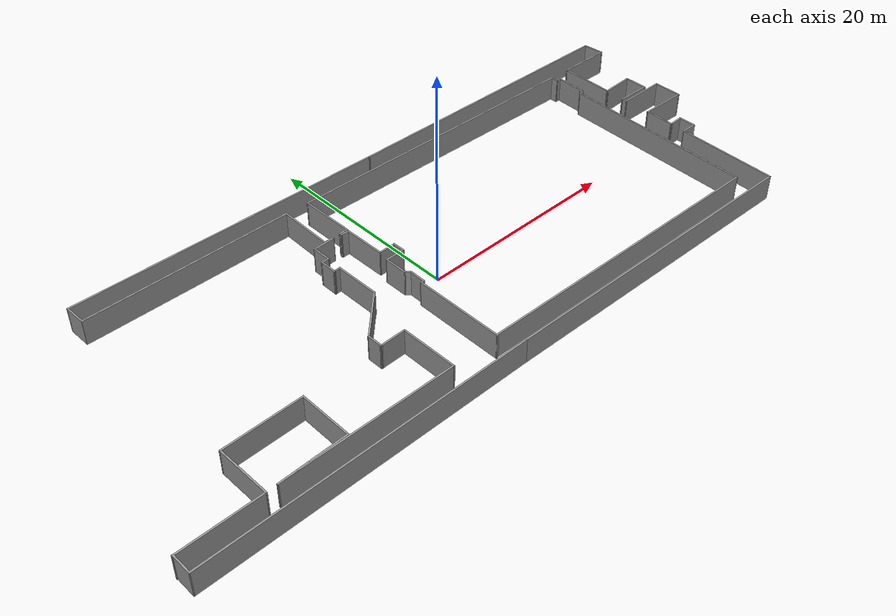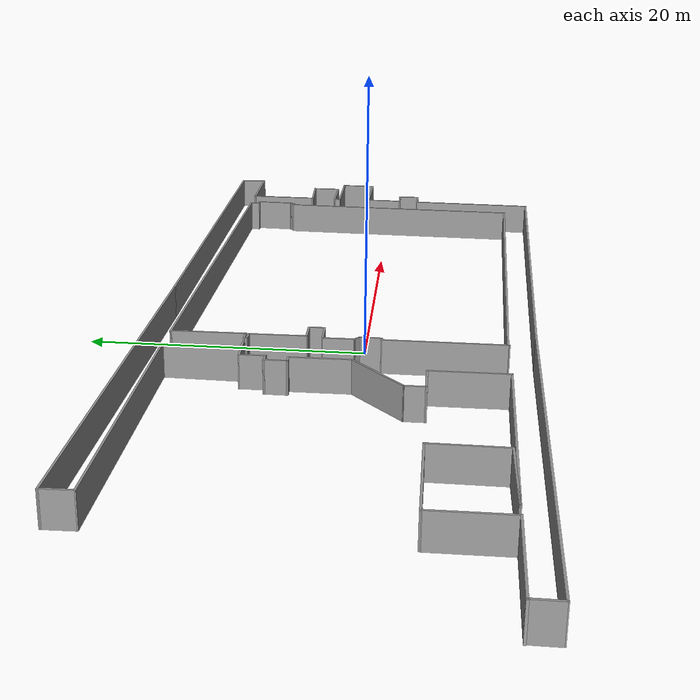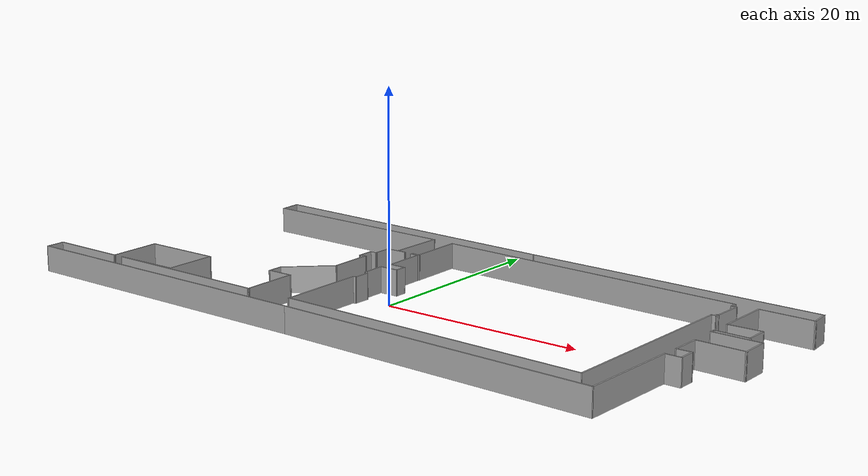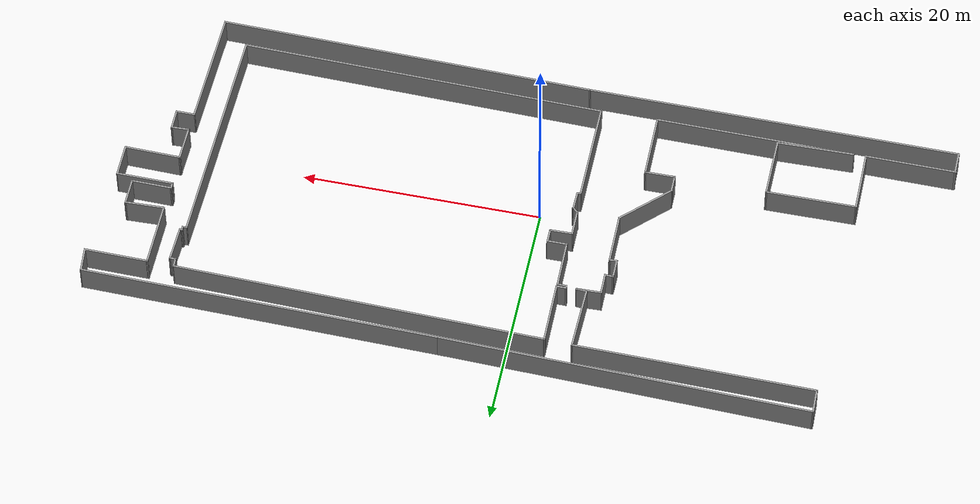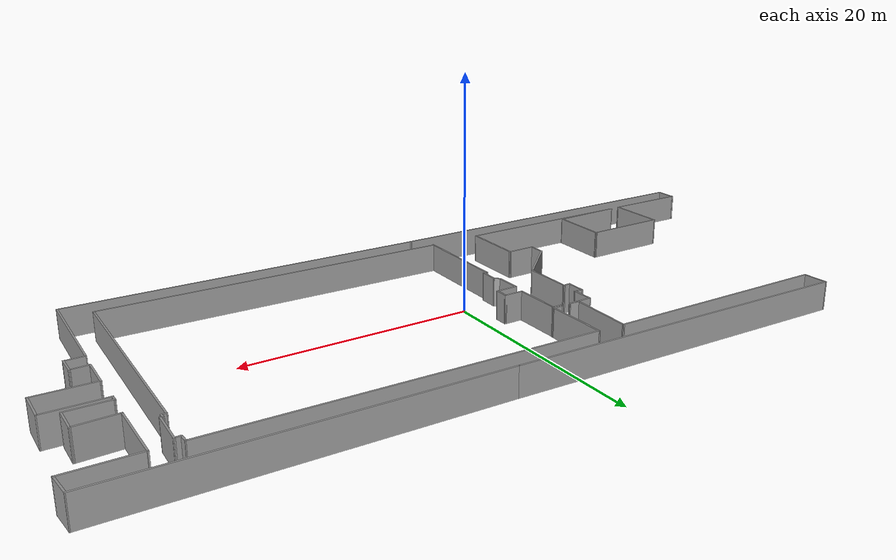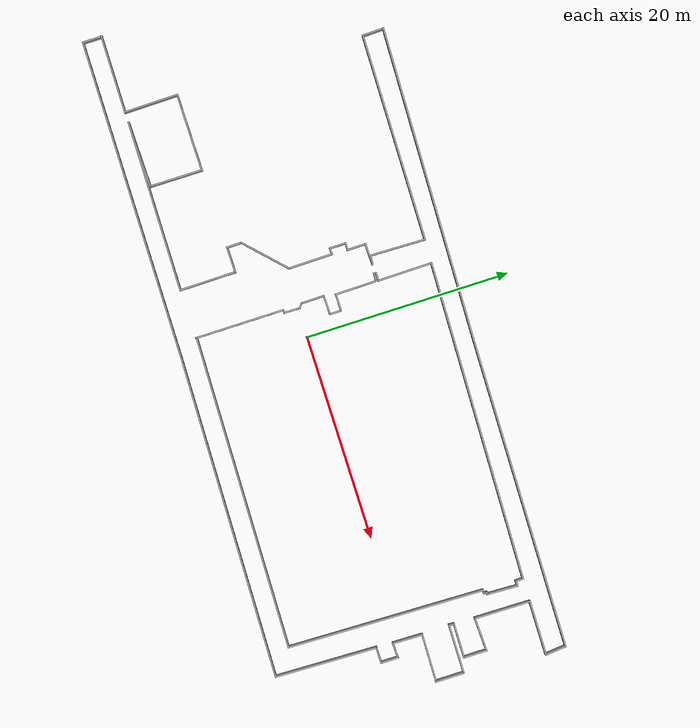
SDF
<?xml version='1.0'?>
<sdf version='1.7'>
  <model name='EnvDC05'>
    <pose>1.21523 1.6061 0 0 -0 0</pose>
    <link name='Wall_0'>
      <collision name='Wall_0_Collision'>
        <geometry>
          <box>
            <size>2 0.15 2.5</size>
          </box>
        </geometry>
        <pose>0 0 1.25 0 -0 0</pose>
      </collision>
      <visual name='Wall_0_Visual'>
        <pose>0 0 1.25 0 -0 0</pose>
        <geometry>
          <box>
            <size>2 0.15 2.5</size>
          </box>
        </geometry>
        <material>
          <script>
            <uri>file://media/materials/scripts/gazebo.material</uri>
            <name>Gazebo/Grey</name>
          </script>
          <ambient>1 1 1 1</ambient>
        </material>
        <meta>
          <layer>0</layer>
        </meta>
      </visual>
      <pose>-34.1484 -12.3245 0 0 -0 -1.5708</pose>
    </link>
    <link name='Wall_10'>
      <collision name='Wall_10_Collision'>
        <geometry>
          <box>
            <size>2.88527 0.15 2.5</size>
          </box>
        </geometry>
        <pose>0 0 1.25 0 -0 0</pose>
      </collision>
      <visual name='Wall_10_Visual'>
        <pose>0 0 1.25 0 -0 0</pose>
        <geometry>
          <box>
            <size>2.88527 0.15 2.5</size>
          </box>
        </geometry>
        <material>
          <script>
            <uri>file://media/materials/scripts/gazebo.material</uri>
            <name>Gazebo/Grey</name>
          </script>
          <ambient>1 1 1 1</ambient>
        </material>
        <meta>
          <layer>0</layer>
        </meta>
      </visual>
      <pose>33.4609 1.48262 0 0 -0 1.5708</pose>
    </link>
    <link name='Wall_11'>
      <collision name='Wall_11_Collision'>
        <geometry>
          <box>
            <size>4.83181 0.15 2.5</size>
          </box>
        </geometry>
        <pose>0 0 1.25 0 -0 0</pose>
      </collision>
      <visual name='Wall_11_Visual'>
        <pose>0 0 1.25 0 -0 0</pose>
        <geometry>
          <box>
            <size>4.83181 0.15 2.5</size>
          </box>
        </geometry>
        <material>
          <script>
            <uri>file://media/materials/scripts/gazebo.material</uri>
            <name>Gazebo/Grey</name>
          </script>
          <ambient>1 1 1 1</ambient>
        </material>
        <meta>
          <layer>0</layer>
        </meta>
      </visual>
      <pose>31.1201 2.87655 0 0 -0 3.13036</pose>
    </link>
    <link name='Wall_12'>
      <collision name='Wall_12_Collision'>
        <geometry>
          <box>
            <size>0.623412 0.15 2.5</size>
          </box>
        </geometry>
        <pose>0 0 1.25 0 -0 0</pose>
      </collision>
      <visual name='Wall_12_Visual'>
        <pose>0 0 1.25 0 -0 0</pose>
        <geometry>
          <box>
            <size>0.623412 0.15 2.5</size>
          </box>
        </geometry>
        <material>
          <script>
            <uri>file://media/materials/scripts/gazebo.material</uri>
            <name>Gazebo/Grey</name>
          </script>
          <ambient>1 1 1 1</ambient>
        </material>
        <meta>
          <layer>0</layer>
        </meta>
      </visual>
      <pose>28.7794 3.13956 0 0 -0 1.5708</pose>
    </link>
    <link name='Wall_13'>
      <collision name='Wall_13_Collision'>
        <geometry>
          <box>
            <size>3.4643 0.15 2.5</size>
          </box>
        </geometry>
        <pose>0 0 1.25 0 -0 0</pose>
      </collision>
      <visual name='Wall_13_Visual'>
        <pose>0 0 1.25 0 -0 0</pose>
        <geometry>
          <box>
            <size>3.4643 0.15 2.5</size>
          </box>
        </geometry>
        <material>
          <script>
            <uri>file://media/materials/scripts/gazebo.material</uri>
            <name>Gazebo/Grey</name>
          </script>
          <ambient>1 1 1 1</ambient>
        </material>
        <meta>
          <layer>0</layer>
        </meta>
      </visual>
      <pose>30.4363 3.34997 0 0 -0 -0.015872</pose>
    </link>
    <link name='Wall_14'>
      <collision name='Wall_14_Collision'>
        <geometry>
          <box>
            <size>2.35926 0.15 2.5</size>
          </box>
        </geometry>
        <pose>0 0 1.25 0 -0 0</pose>
      </collision>
      <visual name='Wall_14_Visual'>
        <pose>0 0 1.25 0 -0 0</pose>
        <geometry>
          <box>
            <size>2.35926 0.15 2.5</size>
          </box>
        </geometry>
        <material>
          <script>
            <uri>file://media/materials/scripts/gazebo.material</uri>
            <name>Gazebo/Grey</name>
          </script>
          <ambient>1 1 1 1</ambient>
        </material>
        <meta>
          <layer>0</layer>
        </meta>
      </visual>
      <pose>32.0933 4.42829 0 0 -0 1.5708</pose>
    </link>
    <link name='Wall_15'>
      <collision name='Wall_15_Collision'>
        <geometry>
          <box>
            <size>3.3604 0.15 2.5</size>
          </box>
        </geometry>
        <pose>0 0 1.25 0 -0 0</pose>
      </collision>
      <visual name='Wall_15_Visual'>
        <pose>0 0 1.25 0 -0 0</pose>
        <geometry>
          <box>
            <size>3.3604 0.15 2.5</size>
          </box>
        </geometry>
        <material>
          <script>
            <uri>file://media/materials/scripts/gazebo.material</uri>
            <name>Gazebo/Grey</name>
          </script>
          <ambient>1 1 1 1</ambient>
        </material>
        <meta>
          <layer>0</layer>
        </meta>
      </visual>
      <pose>30.4889 5.48032 0 0 -0 -3.10882</pose>
    </link>
    <link name='Wall_16'>
      <collision name='Wall_16_Collision'>
        <geometry>
          <box>
            <size>5.56793 0.15 2.5</size>
          </box>
        </geometry>
        <pose>0 0 1.25 0 -0 0</pose>
      </collision>
      <visual name='Wall_16_Visual'>
        <pose>0 0 1.25 0 -0 0</pose>
        <geometry>
          <box>
            <size>5.56793 0.15 2.5</size>
          </box>
        </geometry>
        <material>
          <script>
            <uri>file://media/materials/scripts/gazebo.material</uri>
            <name>Gazebo/Grey</name>
          </script>
          <ambient>1 1 1 1</ambient>
        </material>
        <meta>
          <layer>0</layer>
        </meta>
      </visual>
      <pose>28.9109 8.13668 0 0 -0 1.56109</pose>
    </link>
    <link name='Wall_17'>
      <collision name='Wall_17_Collision'>
        <geometry>
          <box>
            <size>5.40391 0.15 2.5</size>
          </box>
        </geometry>
        <pose>0 0 1.25 0 -0 0</pose>
      </collision>
      <visual name='Wall_17_Visual'>
        <pose>0 0 1.25 0 -0 0</pose>
        <geometry>
          <box>
            <size>5.40391 0.15 2.5</size>
          </box>
        </geometry>
        <material>
          <script>
            <uri>file://media/materials/scripts/gazebo.material</uri>
            <name>Gazebo/Grey</name>
          </script>
          <ambient>1 1 1 1</ambient>
        </material>
        <meta>
          <layer>0</layer>
        </meta>
      </visual>
      <pose>31.5639 10.8087 0 0 -0 -0.014069</pose>
    </link>
    <link name='Wall_18'>
      <collision name='Wall_18_Collision'>
        <geometry>
          <box>
            <size>2.15445 0.15 2.5</size>
          </box>
        </geometry>
        <pose>0 0 1.25 0 -0 0</pose>
      </collision>
      <visual name='Wall_18_Visual'>
        <pose>0 0 1.25 0 -0 0</pose>
        <geometry>
          <box>
            <size>2.15445 0.15 2.5</size>
          </box>
        </geometry>
        <material>
          <script>
            <uri>file://media/materials/scripts/gazebo.material</uri>
            <name>Gazebo/Grey</name>
          </script>
          <ambient>1 1 1 1</ambient>
        </material>
        <meta>
          <layer>0</layer>
        </meta>
      </visual>
      <pose>34.0998 11.7698 0 0 -0 1.66146</pose>
    </link>
    <link name='Wall_19'>
      <collision name='Wall_19_Collision'>
        <geometry>
          <box>
            <size>29.9773 0.15 2.5</size>
          </box>
        </geometry>
        <pose>0 0 1.25 0 -0 0</pose>
      </collision>
      <visual name='Wall_19_Visual'>
        <pose>0 0 1.25 0 -0 0</pose>
        <geometry>
          <box>
            <size>29.9773 0.15 2.5</size>
          </box>
        </geometry>
        <material>
          <script>
            <uri>file://media/materials/scripts/gazebo.material</uri>
            <name>Gazebo/Grey</name>
          </script>
          <ambient>1 1 1 1</ambient>
        </material>
        <meta>
          <layer>0</layer>
        </meta>
      </visual>
      <pose>19.0979 13.0402 0 0 -0 3.12334</pose>
    </link>
    <link name='Wall_2'>
      <collision name='Wall_2_Collision'>
        <geometry>
          <box>
            <size>31.2861 0.15 2.5</size>
          </box>
        </geometry>
        <pose>0 0 1.25 0 -0 0</pose>
      </collision>
      <visual name='Wall_2_Visual'>
        <pose>0 0 1.25 0 -0 0</pose>
        <geometry>
          <box>
            <size>31.2861 0.15 2.5</size>
          </box>
        </geometry>
        <material>
          <script>
            <uri>file://media/materials/scripts/gazebo.material</uri>
            <name>Gazebo/Grey</name>
          </script>
          <ambient>1 1 1 1</ambient>
        </material>
        <meta>
          <layer>0</layer>
        </meta>
      </visual>
      <pose>-18.5807 -13.3614 0 0 -0 -0.007187</pose>
    </link>
    <link name='Wall_20'>
      <collision name='Wall_20_Collision'>
        <geometry>
          <box>
            <size>31.1332 0.15 2.5</size>
          </box>
        </geometry>
        <pose>0 0 1.25 0 -0 0</pose>
      </collision>
      <visual name='Wall_20_Visual'>
        <pose>0 0 1.25 0 -0 0</pose>
        <geometry>
          <box>
            <size>31.1332 0.15 2.5</size>
          </box>
        </geometry>
        <material>
          <script>
            <uri>file://media/materials/scripts/gazebo.material</uri>
            <name>Gazebo/Grey</name>
          </script>
          <ambient>1 1 1 1</ambient>
        </material>
        <meta>
          <layer>0</layer>
        </meta>
      </visual>
      <pose>-11.299 13.7358 0 0 -0 3.11426</pose>
    </link>
    <link name='Wall_21'>
      <collision name='Wall_21_Collision'>
        <geometry>
          <box>
            <size>2.17754 0.15 2.5</size>
          </box>
        </geometry>
        <pose>0 0 1.25 0 -0 0</pose>
      </collision>
      <visual name='Wall_21_Visual'>
        <pose>0 0 1.25 0 -0 0</pose>
        <geometry>
          <box>
            <size>2.17754 0.15 2.5</size>
          </box>
        </geometry>
        <material>
          <script>
            <uri>file://media/materials/scripts/gazebo.material</uri>
            <name>Gazebo/Grey</name>
          </script>
          <ambient>1 1 1 1</ambient>
        </material>
        <meta>
          <layer>0</layer>
        </meta>
      </visual>
      <pose>-26.7546 13.1459 0 0 -0 -1.54096</pose>
    </link>
    <link name='Wall_22'>
      <collision name='Wall_22_Collision'>
        <geometry>
          <box>
            <size>20.2561 0.15 2.5</size>
          </box>
        </geometry>
        <pose>0 0 1.25 0 -0 0</pose>
      </collision>
      <visual name='Wall_22_Visual'>
        <pose>0 0 1.25 0 -0 0</pose>
        <geometry>
          <box>
            <size>20.2561 0.15 2.5</size>
          </box>
        </geometry>
        <material>
          <script>
            <uri>file://media/materials/scripts/gazebo.material</uri>
            <name>Gazebo/Grey</name>
          </script>
          <ambient>1 1 1 1</ambient>
        </material>
        <meta>
          <layer>0</layer>
        </meta>
      </visual>
      <pose>-16.6723 11.9747 0 0 -0 -0.014212</pose>
    </link>
    <link name='Wall_25'>
      <collision name='Wall_25_Collision'>
        <geometry>
          <box>
            <size>5.50832 0.15 2.5</size>
          </box>
        </geometry>
        <pose>0 0 1.25 0 -0 0</pose>
      </collision>
      <visual name='Wall_25_Visual'>
        <pose>0 0 1.25 0 -0 0</pose>
        <geometry>
          <box>
            <size>5.50832 0.15 2.5</size>
          </box>
        </geometry>
        <material>
          <script>
            <uri>file://media/materials/scripts/gazebo.material</uri>
            <name>Gazebo/Grey</name>
          </script>
          <ambient>1 1 1 1</ambient>
        </material>
        <meta>
          <layer>0</layer>
        </meta>
      </visual>
      <pose>-6.67775 9.15331 0 0 -0 -1.59225</pose>
    </link>
    <link name='Wall_27'>
      <collision name='Wall_27_Collision'>
        <geometry>
          <box>
            <size>0.986981 0.15 2.5</size>
          </box>
        </geometry>
        <pose>0 0 1.25 0 -0 0</pose>
      </collision>
      <visual name='Wall_27_Visual'>
        <pose>0 0 1.25 0 -0 0</pose>
        <geometry>
          <box>
            <size>0.986981 0.15 2.5</size>
          </box>
        </geometry>
        <material>
          <script>
            <uri>file://media/materials/scripts/gazebo.material</uri>
            <name>Gazebo/Grey</name>
          </script>
          <ambient>1 1 1 1</ambient>
        </material>
        <meta>
          <layer>0</layer>
        </meta>
      </visual>
      <pose>-6.31205 6.43592 0 0 -0 -0.092975</pose>
    </link>
    <link name='Wall_29'>
      <collision name='Wall_29_Collision'>
        <geometry>
          <box>
            <size>2.17602 0.15 2.5</size>
          </box>
        </geometry>
        <pose>0 0 1.25 0 -0 0</pose>
      </collision>
      <visual name='Wall_29_Visual'>
        <pose>0 0 1.25 0 -0 0</pose>
        <geometry>
          <box>
            <size>2.17602 0.15 2.5</size>
          </box>
        </geometry>
        <material>
          <script>
            <uri>file://media/materials/scripts/gazebo.material</uri>
            <name>Gazebo/Grey</name>
          </script>
          <ambient>1 1 1 1</ambient>
        </material>
        <meta>
          <layer>0</layer>
        </meta>
      </visual>
      <pose>-6.90802 6.37003 0 0 -0 -3.1149</pose>
    </link>
    <link name='Wall_3'>
      <collision name='Wall_3_Collision'>
        <geometry>
          <box>
            <size>31.581 0.15 2.5</size>
          </box>
        </geometry>
        <pose>0 0 1.25 0 -0 0</pose>
      </collision>
      <visual name='Wall_3_Visual'>
        <pose>0 0 1.25 0 -0 0</pose>
        <geometry>
          <box>
            <size>31.581 0.15 2.5</size>
          </box>
        </geometry>
        <material>
          <script>
            <uri>file://media/materials/scripts/gazebo.material</uri>
            <name>Gazebo/Grey</name>
          </script>
          <ambient>1 1 1 1</ambient>
        </material>
        <meta>
          <layer>0</layer>
        </meta>
      </visual>
      <pose>12.6987 -13.8164 0 0 -0 -0.021831</pose>
    </link>
    <link name='Wall_31'>
      <collision name='Wall_31_Collision'>
        <geometry>
          <box>
            <size>1.91746 0.15 2.5</size>
          </box>
        </geometry>
        <pose>0 0 1.25 0 -0 0</pose>
      </collision>
      <visual name='Wall_31_Visual'>
        <pose>0 0 1.25 0 -0 0</pose>
        <geometry>
          <box>
            <size>1.91746 0.15 2.5</size>
          </box>
        </geometry>
        <material>
          <script>
            <uri>file://media/materials/scripts/gazebo.material</uri>
            <name>Gazebo/Grey</name>
          </script>
          <ambient>1 1 1 1</ambient>
        </material>
        <meta>
          <layer>0</layer>
        </meta>
      </visual>
      <pose>-7.90983 5.45933 0 0 -0 -1.55853</pose>
    </link>
    <link name='Wall_32'>
      <collision name='Wall_32_Collision'>
        <geometry>
          <box>
            <size>0.813628 0.15 2.5</size>
          </box>
        </geometry>
        <pose>0 0 1.25 0 -0 0</pose>
      </collision>
      <visual name='Wall_32_Visual'>
        <pose>0 0 1.25 0 -0 0</pose>
        <geometry>
          <box>
            <size>0.813628 0.15 2.5</size>
          </box>
        </geometry>
        <material>
          <script>
            <uri>file://media/materials/scripts/gazebo.material</uri>
            <name>Gazebo/Grey</name>
          </script>
          <ambient>1 1 1 1</ambient>
        </material>
        <meta>
          <layer>0</layer>
        </meta>
      </visual>
      <pose>-8.23061 4.5871 0 0 -0 3.10712</pose>
    </link>
    <link name='Wall_33'>
      <collision name='Wall_33_Collision'>
        <geometry>
          <box>
            <size>1.7282 0.15 2.5</size>
          </box>
        </geometry>
        <pose>0 0 1.25 0 -0 0</pose>
      </collision>
      <visual name='Wall_33_Visual'>
        <pose>0 0 1.25 0 -0 0</pose>
        <geometry>
          <box>
            <size>1.7282 0.15 2.5</size>
          </box>
        </geometry>
        <material>
          <script>
            <uri>file://media/materials/scripts/gazebo.material</uri>
            <name>Gazebo/Grey</name>
          </script>
          <ambient>1 1 1 1</ambient>
        </material>
        <meta>
          <layer>0</layer>
        </meta>
      </visual>
      <pose>-8.56222 3.80951 0 0 -0 -1.5708</pose>
    </link>
    <link name='Wall_34'>
      <collision name='Wall_34_Collision'>
        <geometry>
          <box>
            <size>0.745063 0.15 2.5</size>
          </box>
        </geometry>
        <pose>0 0 1.25 0 -0 0</pose>
      </collision>
      <visual name='Wall_34_Visual'>
        <pose>0 0 1.25 0 -0 0</pose>
        <geometry>
          <box>
            <size>0.745063 0.15 2.5</size>
          </box>
        </geometry>
        <material>
          <script>
            <uri>file://media/materials/scripts/gazebo.material</uri>
            <name>Gazebo/Grey</name>
          </script>
          <ambient>1 1 1 1</ambient>
        </material>
        <meta>
          <layer>0</layer>
        </meta>
      </visual>
      <pose>-8.26491 3.03193 0 0 -0 0.038443</pose>
    </link>
    <link name='Wall_35'>
      <collision name='Wall_35_Collision'>
        <geometry>
          <box>
            <size>4.4044 0.15 2.5</size>
          </box>
        </geometry>
        <pose>0 0 1.25 0 -0 0</pose>
      </collision>
      <visual name='Wall_35_Visual'>
        <pose>0 0 1.25 0 -0 0</pose>
        <geometry>
          <box>
            <size>4.4044 0.15 2.5</size>
          </box>
        </geometry>
        <material>
          <script>
            <uri>file://media/materials/scripts/gazebo.material</uri>
            <name>Gazebo/Grey</name>
          </script>
          <ambient>1 1 1 1</ambient>
        </material>
        <meta>
          <layer>0</layer>
        </meta>
      </visual>
      <pose>-7.94473 0.916441 0 0 -0 -1.56004</pose>
    </link>
    <link name='Wall_37'>
      <collision name='Wall_37_Collision'>
        <geometry>
          <box>
            <size>5.26949 0.15 2.5</size>
          </box>
        </geometry>
        <pose>0 0 1.25 0 -0 0</pose>
      </collision>
      <visual name='Wall_37_Visual'>
        <pose>0 0 1.25 0 -0 0</pose>
        <geometry>
          <box>
            <size>5.26949 0.15 2.5</size>
          </box>
        </geometry>
        <material>
          <script>
            <uri>file://media/materials/scripts/gazebo.material</uri>
            <name>Gazebo/Grey</name>
          </script>
          <ambient>1 1 1 1</ambient>
        </material>
        <meta>
          <layer>0</layer>
        </meta>
      </visual>
      <pose>-9.76229 -2.98955 0 0 -0 -2.37315</pose>
    </link>
    <link name='Wall_38'>
      <collision name='Wall_38_Collision'>
        <geometry>
          <box>
            <size>1.57136 0.15 2.5</size>
          </box>
        </geometry>
        <pose>0 0 1.25 0 -0 0</pose>
      </collision>
      <visual name='Wall_38_Visual'>
        <pose>0 0 1.25 0 -0 0</pose>
        <geometry>
          <box>
            <size>1.57136 0.15 2.5</size>
          </box>
        </geometry>
        <material>
          <script>
            <uri>file://media/materials/scripts/gazebo.material</uri>
            <name>Gazebo/Grey</name>
          </script>
          <ambient>1 1 1 1</ambient>
        </material>
        <meta>
          <layer>0</layer>
        </meta>
      </visual>
      <pose>-11.597 -5.47928 0 0 -0 -1.5628</pose>
    </link>
    <link name='Wall_39'>
      <collision name='Wall_39_Collision'>
        <geometry>
          <box>
            <size>2.60613 0.15 2.5</size>
          </box>
        </geometry>
        <pose>0 0 1.25 0 -0 0</pose>
      </collision>
      <visual name='Wall_39_Visual'>
        <pose>0 0 1.25 0 -0 0</pose>
        <geometry>
          <box>
            <size>2.60613 0.15 2.5</size>
          </box>
        </geometry>
        <material>
          <script>
            <uri>file://media/materials/scripts/gazebo.material</uri>
            <name>Gazebo/Grey</name>
          </script>
          <ambient>1 1 1 1</ambient>
        </material>
        <meta>
          <layer>0</layer>
        </meta>
      </visual>
      <pose>-10.3633 -6.17856 0 0 -0 0.009259</pose>
    </link>
    <link name='Wall_4'>
      <collision name='Wall_4_Collision'>
        <geometry>
          <box>
            <size>10.0337 0.15 2.5</size>
          </box>
        </geometry>
        <pose>0 0 1.25 0 -0 0</pose>
      </collision>
      <visual name='Wall_4_Visual'>
        <pose>0 0 1.25 0 -0 0</pose>
        <geometry>
          <box>
            <size>10.0337 0.15 2.5</size>
          </box>
        </geometry>
        <material>
          <script>
            <uri>file://media/materials/scripts/gazebo.material</uri>
            <name>Gazebo/Grey</name>
          </script>
          <ambient>1 1 1 1</ambient>
        </material>
        <meta>
          <layer>0</layer>
        </meta>
      </visual>
      <pose>28.5477 -9.21946 0 0 -0 1.54303</pose>
    </link>
    <link name='Wall_41'>
      <collision name='Wall_41_Collision'>
        <geometry>
          <box>
            <size>5.59926 0.15 2.5</size>
          </box>
        </geometry>
        <pose>0 0 1.25 0 -0 0</pose>
      </collision>
      <visual name='Wall_41_Visual'>
        <pose>0 0 1.25 0 -0 0</pose>
        <geometry>
          <box>
            <size>5.59926 0.15 2.5</size>
          </box>
        </geometry>
        <material>
          <script>
            <uri>file://media/materials/scripts/gazebo.material</uri>
            <name>Gazebo/Grey</name>
          </script>
          <ambient>1 1 1 1</ambient>
        </material>
        <meta>
          <layer>0</layer>
        </meta>
      </visual>
      <pose>-9.11424 -8.89174 0 0 -0 -1.56305</pose>
    </link>
    <link name='Wall_44'>
      <collision name='Wall_44_Collision'>
        <geometry>
          <box>
            <size>16.7027 0.15 2.5</size>
          </box>
        </geometry>
        <pose>0 0 1.25 0 -0 0</pose>
      </collision>
      <visual name='Wall_44_Visual'>
        <pose>0 0 1.25 0 -0 0</pose>
        <geometry>
          <box>
            <size>16.7027 0.15 2.5</size>
          </box>
        </geometry>
        <material>
          <script>
            <uri>file://media/materials/scripts/gazebo.material</uri>
            <name>Gazebo/Grey</name>
          </script>
          <ambient>1 1 1 1</ambient>
        </material>
        <meta>
          <layer>0</layer>
        </meta>
      </visual>
      <pose>-17.3691 -11.5333 0 0 -0 3.13157</pose>
    </link>
    <link name='Wall_45'>
      <collision name='Wall_45_Collision'>
        <geometry>
          <box>
            <size>6.51464 0.15 2.5</size>
          </box>
        </geometry>
        <pose>0 0 1.25 0 -0 0</pose>
      </collision>
      <visual name='Wall_45_Visual'>
        <pose>0 0 1.25 0 -0 0</pose>
        <geometry>
          <box>
            <size>6.51464 0.15 2.5</size>
          </box>
        </geometry>
        <material>
          <script>
            <uri>file://media/materials/scripts/gazebo.material</uri>
            <name>Gazebo/Grey</name>
          </script>
          <ambient>1 1 1 1</ambient>
        </material>
        <meta>
          <layer>0</layer>
        </meta>
      </visual>
      <pose>-22.4631 -11.3907 0 0 -0 0.018748</pose>
    </link>
    <link name='Wall_46'>
      <collision name='Wall_46_Collision'>
        <geometry>
          <box>
            <size>5.24113 0.15 2.5</size>
          </box>
        </geometry>
        <pose>0 0 1.25 0 -0 0</pose>
      </collision>
      <visual name='Wall_46_Visual'>
        <pose>0 0 1.25 0 -0 0</pose>
        <geometry>
          <box>
            <size>5.24113 0.15 2.5</size>
          </box>
        </geometry>
        <material>
          <script>
            <uri>file://media/materials/scripts/gazebo.material</uri>
            <name>Gazebo/Grey</name>
          </script>
          <ambient>1 1 1 1</ambient>
        </material>
        <meta>
          <layer>0</layer>
        </meta>
      </visual>
      <pose>-19.2712 -8.78549 0 0 -0 1.56689</pose>
    </link>
    <link name='Wall_47'>
      <collision name='Wall_47_Collision'>
        <geometry>
          <box>
            <size>7.62764 0.15 2.5</size>
          </box>
        </geometry>
        <pose>0 0 1.25 0 -0 0</pose>
      </collision>
      <visual name='Wall_47_Visual'>
        <pose>0 0 1.25 0 -0 0</pose>
        <geometry>
          <box>
            <size>7.62764 0.15 2.5</size>
          </box>
        </geometry>
        <material>
          <script>
            <uri>file://media/materials/scripts/gazebo.material</uri>
            <name>Gazebo/Grey</name>
          </script>
          <ambient>1 1 1 1</ambient>
        </material>
        <meta>
          <layer>0</layer>
        </meta>
      </visual>
      <pose>-23 -6.25983 0 0 -0 -3.13627</pose>
    </link>
    <link name='Wall_48'>
      <collision name='Wall_48_Collision'>
        <geometry>
          <box>
            <size>5.34087 0.15 2.5</size>
          </box>
        </geometry>
        <pose>0 0 1.25 0 -0 0</pose>
      </collision>
      <visual name='Wall_48_Visual'>
        <pose>0 0 1.25 0 -0 0</pose>
        <geometry>
          <box>
            <size>5.34087 0.15 2.5</size>
          </box>
        </geometry>
        <material>
          <script>
            <uri>file://media/materials/scripts/gazebo.material</uri>
            <name>Gazebo/Grey</name>
          </script>
          <ambient>1 1 1 1</ambient>
        </material>
        <meta>
          <layer>0</layer>
        </meta>
      </visual>
      <pose>-26.709 -8.87498 0 0 -0 -1.5593</pose>
    </link>
    <link name='Wall_49'>
      <collision name='Wall_49_Collision'>
        <geometry>
          <box>
            <size>7.66755 0.15 2.5</size>
          </box>
        </geometry>
        <pose>0 0 1.25 0 -0 0</pose>
      </collision>
      <visual name='Wall_49_Visual'>
        <pose>0 0 1.25 0 -0 0</pose>
        <geometry>
          <box>
            <size>7.66755 0.15 2.5</size>
          </box>
        </geometry>
        <material>
          <script>
            <uri>file://media/materials/scripts/gazebo.material</uri>
            <name>Gazebo/Grey</name>
          </script>
          <ambient>1 1 1 1</ambient>
        </material>
        <meta>
          <layer>0</layer>
        </meta>
      </visual>
      <pose>-30.4378 -11.4404 0 0 -0 3.13366</pose>
    </link>
    <link name='Wall_5'>
      <collision name='Wall_5_Collision'>
        <geometry>
          <box>
            <size>1.65943 0.15 2.5</size>
          </box>
        </geometry>
        <pose>0 0 1.25 0 -0 0</pose>
      </collision>
      <visual name='Wall_5_Visual'>
        <pose>0 0 1.25 0 -0 0</pose>
        <geometry>
          <box>
            <size>1.65943 0.15 2.5</size>
          </box>
        </geometry>
        <material>
          <script>
            <uri>file://media/materials/scripts/gazebo.material</uri>
            <name>Gazebo/Grey</name>
          </script>
          <ambient>1 1 1 1</ambient>
        </material>
        <meta>
          <layer>0</layer>
        </meta>
      </visual>
      <pose>29.4396 -4.27952 0 0 -0 0</pose>
    </link>
    <link name='Wall_51'>
      <collision name='Wall_51_Collision'>
        <geometry>
          <box>
            <size>30.6197 0.15 2.5</size>
          </box>
        </geometry>
        <pose>0 0 1.25 0 -0 0</pose>
      </collision>
      <visual name='Wall_51_Visual'>
        <pose>0 0 1.25 0 -0 0</pose>
        <geometry>
          <box>
            <size>30.6197 0.15 2.5</size>
          </box>
        </geometry>
        <material>
          <script>
            <uri>file://media/materials/scripts/gazebo.material</uri>
            <name>Gazebo/Grey</name>
          </script>
          <ambient>1 1 1 1</ambient>
        </material>
        <meta>
          <layer>0</layer>
        </meta>
      </visual>
      <pose>10.8971 -11.8371 0 0 -0 -0.021018</pose>
    </link>
    <link name='Wall_52'>
      <collision name='Wall_52_Collision'>
        <geometry>
          <box>
            <size>19.2749 0.15 2.5</size>
          </box>
        </geometry>
        <pose>0 0 1.25 0 -0 0</pose>
      </collision>
      <visual name='Wall_52_Visual'>
        <pose>0 0 1.25 0 -0 0</pose>
        <geometry>
          <box>
            <size>19.2749 0.15 2.5</size>
          </box>
        </geometry>
        <material>
          <script>
            <uri>file://media/materials/scripts/gazebo.material</uri>
            <name>Gazebo/Grey</name>
          </script>
          <ambient>1 1 1 1</ambient>
        </material>
        <meta>
          <layer>0</layer>
        </meta>
      </visual>
      <pose>26.3574 -2.59757 0 0 -0 1.54688</pose>
    </link>
    <link name='Wall_53'>
      <collision name='Wall_53_Collision'>
        <geometry>
          <box>
            <size>0.479532 0.15 2.5</size>
          </box>
        </geometry>
        <pose>0 0 1.25 0 -0 0</pose>
      </collision>
      <visual name='Wall_53_Visual'>
        <pose>0 0 1.25 0 -0 0</pose>
        <geometry>
          <box>
            <size>0.479532 0.15 2.5</size>
          </box>
        </geometry>
        <material>
          <script>
            <uri>file://media/materials/scripts/gazebo.material</uri>
            <name>Gazebo/Grey</name>
          </script>
          <ambient>1 1 1 1</ambient>
        </material>
        <meta>
          <layer>0</layer>
        </meta>
      </visual>
      <pose>26.7506 6.97026 0 0 -0 0.049248</pose>
    </link>
    <link name='Wall_55'>
      <collision name='Wall_55_Collision'>
        <geometry>
          <box>
            <size>0.423047 0.15 2.5</size>
          </box>
        </geometry>
        <pose>0 0 1.25 0 -0 0</pose>
      </collision>
      <visual name='Wall_55_Visual'>
        <pose>0 0 1.25 0 -0 0</pose>
        <geometry>
          <box>
            <size>0.423047 0.15 2.5</size>
          </box>
        </geometry>
        <material>
          <script>
            <uri>file://media/materials/scripts/gazebo.material</uri>
            <name>Gazebo/Grey</name>
          </script>
          <ambient>1 1 1 1</ambient>
        </material>
        <meta>
          <layer>0</layer>
        </meta>
      </visual>
      <pose>26.9087 7.11489 0 0 -0 1.61838</pose>
    </link>
    <link name='Wall_56'>
      <collision name='Wall_56_Collision'>
        <geometry>
          <box>
            <size>0.319029 0.15 2.5</size>
          </box>
        </geometry>
        <pose>0 0 1.25 0 -0 0</pose>
      </collision>
      <visual name='Wall_56_Visual'>
        <pose>0 0 1.25 0 -0 0</pose>
        <geometry>
          <box>
            <size>0.319029 0.15 2.5</size>
          </box>
        </geometry>
        <material>
          <script>
            <uri>file://media/materials/scripts/gazebo.material</uri>
            <name>Gazebo/Grey</name>
          </script>
          <ambient>1 1 1 1</ambient>
        </material>
        <meta>
          <layer>0</layer>
        </meta>
      </visual>
      <pose>26.9867 7.25142 0 0 -0 0</pose>
    </link>
    <link name='Wall_57'>
      <collision name='Wall_57_Collision'>
        <geometry>
          <box>
            <size>3.09084 0.15 2.5</size>
          </box>
        </geometry>
        <pose>0 0 1.25 0 -0 0</pose>
      </collision>
      <visual name='Wall_57_Visual'>
        <pose>0 0 1.25 0 -0 0</pose>
        <geometry>
          <box>
            <size>3.09084 0.15 2.5</size>
          </box>
        </geometry>
        <material>
          <script>
            <uri>file://media/materials/scripts/gazebo.material</uri>
            <name>Gazebo/Grey</name>
          </script>
          <ambient>1 1 1 1</ambient>
        </material>
        <meta>
          <layer>0</layer>
        </meta>
      </visual>
      <pose>27.1232 8.72067 0 0 -0 1.53541</pose>
    </link>
    <link name='Wall_58'>
      <collision name='Wall_58_Collision'>
        <geometry>
          <box>
            <size>0.605264 0.15 2.5</size>
          </box>
        </geometry>
        <pose>0 0 1.25 0 -0 0</pose>
      </collision>
      <visual name='Wall_58_Visual'>
        <pose>0 0 1.25 0 -0 0</pose>
        <geometry>
          <box>
            <size>0.605264 0.15 2.5</size>
          </box>
        </geometry>
        <material>
          <script>
            <uri>file://media/materials/scripts/gazebo.material</uri>
            <name>Gazebo/Grey</name>
          </script>
          <ambient>1 1 1 1</ambient>
        </material>
        <meta>
          <layer>0</layer>
        </meta>
      </visual>
      <pose>26.9477 10.1899 0 0 -0 3.14159</pose>
    </link>
    <link name='Wall_59'>
      <collision name='Wall_59_Collision'>
        <geometry>
          <box>
            <size>0.852602 0.15 2.5</size>
          </box>
        </geometry>
        <pose>0 0 1.25 0 -0 0</pose>
      </collision>
      <visual name='Wall_59_Visual'>
        <pose>0 0 1.25 0 -0 0</pose>
        <geometry>
          <box>
            <size>0.852602 0.15 2.5</size>
          </box>
        </geometry>
        <material>
          <script>
            <uri>file://media/materials/scripts/gazebo.material</uri>
            <name>Gazebo/Grey</name>
          </script>
          <ambient>1 1 1 1</ambient>
        </material>
        <meta>
          <layer>0</layer>
        </meta>
      </visual>
      <pose>26.7071 10.541 0 0 -0 1.60782</pose>
    </link>
    <link name='Wall_6'>
      <collision name='Wall_6_Collision'>
        <geometry>
          <box>
            <size>1.79665 0.15 2.5</size>
          </box>
        </geometry>
        <pose>0 0 1.25 0 -0 0</pose>
      </collision>
      <visual name='Wall_6_Visual'>
        <pose>0 0 1.25 0 -0 0</pose>
        <geometry>
          <box>
            <size>1.79665 0.15 2.5</size>
          </box>
        </geometry>
        <material>
          <script>
            <uri>file://media/materials/scripts/gazebo.material</uri>
            <name>Gazebo/Grey</name>
          </script>
          <ambient>1 1 1 1</ambient>
        </material>
        <meta>
          <layer>0</layer>
        </meta>
      </visual>
      <pose>30.1943 -3.45619 0 0 -0 1.5708</pose>
    </link>
    <link name='Wall_60'>
      <collision name='Wall_60_Collision'>
        <geometry>
          <box>
            <size>31.1687 0.15 2.5</size>
          </box>
        </geometry>
        <pose>0 0 1.25 0 -0 0</pose>
      </collision>
      <visual name='Wall_60_Visual'>
        <pose>0 0 1.25 0 -0 0</pose>
        <geometry>
          <box>
            <size>31.1687 0.15 2.5</size>
          </box>
        </geometry>
        <material>
          <script>
            <uri>file://media/materials/scripts/gazebo.material</uri>
            <name>Gazebo/Grey</name>
          </script>
          <ambient>1 1 1 1</ambient>
        </material>
        <meta>
          <layer>0</layer>
        </meta>
      </visual>
      <pose>11.1906 11.3145 0 0 -0 3.11435</pose>
    </link>
    <link name='Wall_61'>
      <collision name='Wall_61_Collision'>
        <geometry>
          <box>
            <size>5.4132 0.15 2.5</size>
          </box>
        </geometry>
        <pose>0 0 1.25 0 -0 0</pose>
      </collision>
      <visual name='Wall_61_Visual'>
        <pose>0 0 1.25 0 -0 0</pose>
        <geometry>
          <box>
            <size>5.4132 0.15 2.5</size>
          </box>
        </geometry>
        <material>
          <script>
            <uri>file://media/materials/scripts/gazebo.material</uri>
            <name>Gazebo/Grey</name>
          </script>
          <ambient>1 1 1 1</ambient>
        </material>
        <meta>
          <layer>0</layer>
        </meta>
      </visual>
      <pose>-4.28297 9.10535 0 0 -0 -1.55937</pose>
    </link>
    <link name='Wall_63'>
      <collision name='Wall_63_Collision'>
        <geometry>
          <box>
            <size>0.919446 0.15 2.5</size>
          </box>
        </geometry>
        <pose>0 0 1.25 0 -0 0</pose>
      </collision>
      <visual name='Wall_63_Visual'>
        <pose>0 0 1.25 0 -0 0</pose>
        <geometry>
          <box>
            <size>0.919446 0.15 2.5</size>
          </box>
        </geometry>
        <material>
          <script>
            <uri>file://media/materials/scripts/gazebo.material</uri>
            <name>Gazebo/Grey</name>
          </script>
          <ambient>1 1 1 1</ambient>
        </material>
        <meta>
          <layer>0</layer>
        </meta>
      </visual>
      <pose>-4.6376 6.47657 0 0 -0 3.13436</pose>
    </link>
    <link name='Wall_64'>
      <collision name='Wall_64_Collision'>
        <geometry>
          <box>
            <size>0.336446 0.15 2.5</size>
          </box>
        </geometry>
        <pose>0 0 1.25 0 -0 0</pose>
      </collision>
      <visual name='Wall_64_Visual'>
        <pose>0 0 1.25 0 -0 0</pose>
        <geometry>
          <box>
            <size>0.336446 0.15 2.5</size>
          </box>
        </geometry>
        <material>
          <script>
            <uri>file://media/materials/scripts/gazebo.material</uri>
            <name>Gazebo/Grey</name>
          </script>
          <ambient>1 1 1 1</ambient>
        </material>
        <meta>
          <layer>0</layer>
        </meta>
      </visual>
      <pose>-5.02232 6.38642 0 0 -0 -1.5708</pose>
    </link>
    <link name='Wall_65'>
      <collision name='Wall_65_Collision'>
        <geometry>
          <box>
            <size>0.879903 0.15 2.5</size>
          </box>
        </geometry>
        <pose>0 0 1.25 0 -0 0</pose>
      </collision>
      <visual name='Wall_65_Visual'>
        <pose>0 0 1.25 0 -0 0</pose>
        <geometry>
          <box>
            <size>0.879903 0.15 2.5</size>
          </box>
        </geometry>
        <material>
          <script>
            <uri>file://media/materials/scripts/gazebo.material</uri>
            <name>Gazebo/Grey</name>
          </script>
          <ambient>1 1 1 1</ambient>
        </material>
        <meta>
          <layer>0</layer>
        </meta>
      </visual>
      <pose>-4.65805 6.27119 0 0 -0 -0.061148</pose>
    </link>
    <link name='Wall_67'>
      <collision name='Wall_67_Collision'>
        <geometry>
          <box>
            <size>4.15726 0.15 2.5</size>
          </box>
        </geometry>
        <pose>0 0 1.25 0 -0 0</pose>
      </collision>
      <visual name='Wall_67_Visual'>
        <pose>0 0 1.25 0 -0 0</pose>
        <geometry>
          <box>
            <size>4.15726 0.15 2.5</size>
          </box>
        </geometry>
        <material>
          <script>
            <uri>file://media/materials/scripts/gazebo.material</uri>
            <name>Gazebo/Grey</name>
          </script>
          <ambient>1 1 1 1</ambient>
        </material>
        <meta>
          <layer>0</layer>
        </meta>
      </visual>
      <pose>-4.26202 4.24537 0 0 -0 -1.55494</pose>
    </link>
    <link name='Wall_68'>
      <collision name='Wall_68_Collision'>
        <geometry>
          <box>
            <size>1.75 0.15 2.5</size>
          </box>
        </geometry>
        <pose>0 0 1.25 0 -0 0</pose>
      </collision>
      <visual name='Wall_68_Visual'>
        <pose>0 0 1.25 0 -0 0</pose>
        <geometry>
          <box>
            <size>1.75 0.15 2.5</size>
          </box>
        </geometry>
        <material>
          <script>
            <uri>file://media/materials/scripts/gazebo.material</uri>
            <name>Gazebo/Grey</name>
          </script>
          <ambient>1 1 1 1</ambient>
        </material>
        <meta>
          <layer>0</layer>
        </meta>
      </visual>
      <pose>-3.43025 2.24185 0 0 -0 0</pose>
    </link>
    <link name='Wall_69'>
      <collision name='Wall_69_Collision'>
        <geometry>
          <box>
            <size>1.25 0.15 2.5</size>
          </box>
        </geometry>
        <pose>0 0 1.25 0 -0 0</pose>
      </collision>
      <visual name='Wall_69_Visual'>
        <pose>0 0 1.25 0 -0 0</pose>
        <geometry>
          <box>
            <size>1.25 0.15 2.5</size>
          </box>
        </geometry>
        <material>
          <script>
            <uri>file://media/materials/scripts/gazebo.material</uri>
            <name>Gazebo/Grey</name>
          </script>
          <ambient>1 1 1 1</ambient>
        </material>
        <meta>
          <layer>0</layer>
        </meta>
      </visual>
      <pose>-2.63025 1.69185 0 0 -0 -1.5708</pose>
    </link>
    <link name='Wall_7'>
      <collision name='Wall_7_Collision'>
        <geometry>
          <box>
            <size>1.56869 0.15 2.5</size>
          </box>
        </geometry>
        <pose>0 0 1.25 0 -0 0</pose>
      </collision>
      <visual name='Wall_7_Visual'>
        <pose>0 0 1.25 0 -0 0</pose>
        <geometry>
          <box>
            <size>1.56869 0.15 2.5</size>
          </box>
        </geometry>
        <material>
          <script>
            <uri>file://media/materials/scripts/gazebo.material</uri>
            <name>Gazebo/Grey</name>
          </script>
          <ambient>1 1 1 1</ambient>
        </material>
        <meta>
          <layer>0</layer>
        </meta>
      </visual>
      <pose>29.4854 -2.65574 0 0 -0 -3.10935</pose>
    </link>
    <link name='Wall_70'>
      <collision name='Wall_70_Collision'>
        <geometry>
          <box>
            <size>1.97778 0.15 2.5</size>
          </box>
        </geometry>
        <pose>0 0 1.25 0 -0 0</pose>
      </collision>
      <visual name='Wall_70_Visual'>
        <pose>0 0 1.25 0 -0 0</pose>
        <geometry>
          <box>
            <size>1.97778 0.15 2.5</size>
          </box>
        </geometry>
        <material>
          <script>
            <uri>file://media/materials/scripts/gazebo.material</uri>
            <name>Gazebo/Grey</name>
          </script>
          <ambient>1 1 1 1</ambient>
        </material>
        <meta>
          <layer>0</layer>
        </meta>
      </visual>
      <pose>-3.54396 1.12332 0 0 -0 -3.12132</pose>
    </link>
    <link name='Wall_72'>
      <collision name='Wall_72_Collision'>
        <geometry>
          <box>
            <size>2.33325 0.15 2.5</size>
          </box>
        </geometry>
        <pose>0 0 1.25 0 -0 0</pose>
      </collision>
      <visual name='Wall_72_Visual'>
        <pose>0 0 1.25 0 -0 0</pose>
        <geometry>
          <box>
            <size>2.33325 0.15 2.5</size>
          </box>
        </geometry>
        <material>
          <script>
            <uri>file://media/materials/scripts/gazebo.material</uri>
            <name>Gazebo/Grey</name>
          </script>
          <ambient>1 1 1 1</ambient>
        </material>
        <meta>
          <layer>0</layer>
        </meta>
      </visual>
      <pose>-4.44629 0.013228 0 0 -0 -1.56038</pose>
    </link>
    <link name='Wall_73'>
      <collision name='Wall_73_Collision'>
        <geometry>
          <box>
            <size>0.665574 0.15 2.5</size>
          </box>
        </geometry>
        <pose>0 0 1.25 0 -0 0</pose>
      </collision>
      <visual name='Wall_73_Visual'>
        <pose>0 0 1.25 0 -0 0</pose>
        <geometry>
          <box>
            <size>0.665574 0.15 2.5</size>
          </box>
        </geometry>
        <material>
          <script>
            <uri>file://media/materials/scripts/gazebo.material</uri>
            <name>Gazebo/Grey</name>
          </script>
          <ambient>1 1 1 1</ambient>
        </material>
        <meta>
          <layer>0</layer>
        </meta>
      </visual>
      <pose>-4.24162 -1.2489 0 0 -0 -0.722979</pose>
    </link>
    <link name='Wall_74'>
      <collision name='Wall_74_Collision'>
        <geometry>
          <box>
            <size>1.67382 0.15 2.5</size>
          </box>
        </geometry>
        <pose>0 0 1.25 0 -0 0</pose>
      </collision>
      <visual name='Wall_74_Visual'>
        <pose>0 0 1.25 0 -0 0</pose>
        <geometry>
          <box>
            <size>1.67382 0.15 2.5</size>
          </box>
        </geometry>
        <material>
          <script>
            <uri>file://media/materials/scripts/gazebo.material</uri>
            <name>Gazebo/Grey</name>
          </script>
          <ambient>1 1 1 1</ambient>
        </material>
        <meta>
          <layer>0</layer>
        </meta>
      </visual>
      <pose>-4.05969 -2.18128 0 0 -0 -1.58572</pose>
    </link>
    <link name='Wall_76'>
      <collision name='Wall_76_Collision'>
        <geometry>
          <box>
            <size>0.42198 0.15 2.5</size>
          </box>
        </geometry>
        <pose>0 0 1.25 0 -0 0</pose>
      </collision>
      <visual name='Wall_76_Visual'>
        <pose>0 0 1.25 0 -0 0</pose>
        <geometry>
          <box>
            <size>0.42198 0.15 2.5</size>
          </box>
        </geometry>
        <material>
          <script>
            <uri>file://media/materials/scripts/gazebo.material</uri>
            <name>Gazebo/Grey</name>
          </script>
          <ambient>1 1 1 1</ambient>
        </material>
        <meta>
          <layer>0</layer>
        </meta>
      </visual>
      <pose>-4.20706 -2.95031 0 0 -0 -3.08866</pose>
    </link>
    <link name='Wall_8'>
      <collision name='Wall_8_Collision'>
        <geometry>
          <box>
            <size>3.04933 0.15 2.5</size>
          </box>
        </geometry>
        <pose>0 0 1.25 0 -0 0</pose>
      </collision>
      <visual name='Wall_8_Visual'>
        <pose>0 0 1.25 0 -0 0</pose>
        <geometry>
          <box>
            <size>3.04933 0.15 2.5</size>
          </box>
        </geometry>
        <material>
          <script>
            <uri>file://media/materials/scripts/gazebo.material</uri>
            <name>Gazebo/Grey</name>
          </script>
          <ambient>1 1 1 1</ambient>
        </material>
        <meta>
          <layer>0</layer>
        </meta>
      </visual>
      <pose>28.8042 -1.22921 0 0 -0 1.55162</pose>
    </link>
    <link name='Wall_80'>
      <collision name='Wall_80_Collision'>
        <geometry>
          <box>
            <size>8.7869 0.15 2.5</size>
          </box>
        </geometry>
        <pose>0 0 1.25 0 -0 0</pose>
      </collision>
      <visual name='Wall_80_Visual'>
        <pose>0 0 1.25 0 -0 0</pose>
        <geometry>
          <box>
            <size>8.7869 0.15 2.5</size>
          </box>
        </geometry>
        <material>
          <script>
            <uri>file://media/materials/scripts/gazebo.material</uri>
            <name>Gazebo/Grey</name>
          </script>
          <ambient>1 1 1 1</ambient>
        </material>
        <meta>
          <layer>0</layer>
        </meta>
      </visual>
      <pose>-4.33908 -7.27593 0 0 -0 -1.56988</pose>
    </link>
    <link name='Wall_9'>
      <collision name='Wall_9_Collision'>
        <geometry>
          <box>
            <size>4.78011 0.15 2.5</size>
          </box>
        </geometry>
        <pose>0 0 1.25 0 -0 0</pose>
      </collision>
      <visual name='Wall_9_Visual'>
        <pose>0 0 1.25 0 -0 0</pose>
        <geometry>
          <box>
            <size>4.78011 0.15 2.5</size>
          </box>
        </geometry>
        <material>
          <script>
            <uri>file://media/materials/scripts/gazebo.material</uri>
            <name>Gazebo/Grey</name>
          </script>
          <ambient>1 1 1 1</ambient>
        </material>
        <meta>
          <layer>0</layer>
        </meta>
      </visual>
      <pose>31.1464 0.167588 0 0 -0 -0.022723</pose>
    </link>
    <static>1</static>
  </model>
</sdf>
